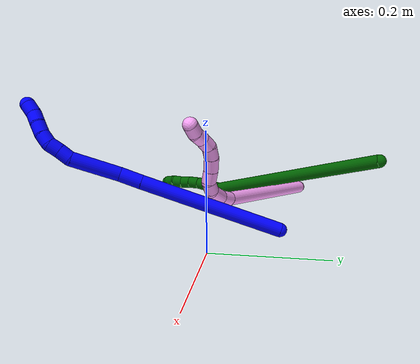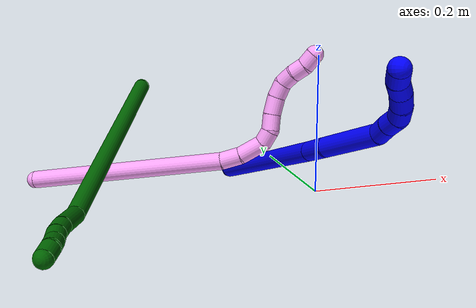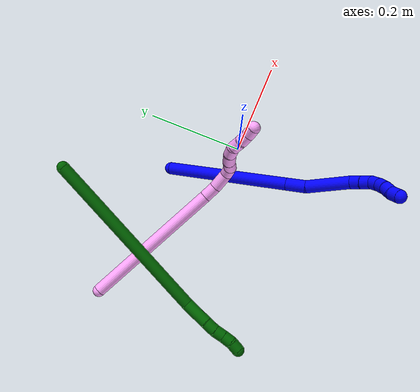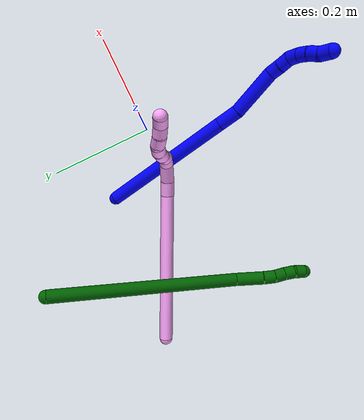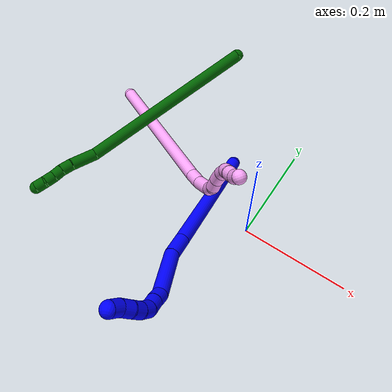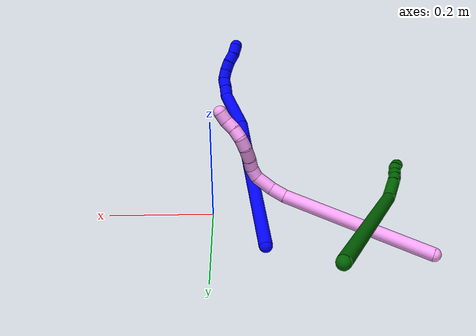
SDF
<sdf version="1.7">
 <world name="default">
  <model name="photoneo_s_sensor">
   <static>1</static>
   <pose>0 0 2 1.57079 1.57079 3.14159</pose>
   <link name="link">
    <inertial><mass>0.1</mass></inertial>
    <sensor name="sensor" type="depth">
     <update_rate>30</update_rate>
     <camera>
      <horizontal_fov>1.22</horizontal_fov>
      <image><width>1920</width><height>1200</height><format>B8G8R8</format></image>
      <clip><near>0.1</near><far>4</far></clip>
      <depth_camera><output>points</output></depth_camera>
     </camera>
     <plugin name="camera_plugin" filename="libgazebo_ros_depth_camera.so">
      <baseline>0.2</baseline>
      <alwaysOn>1</alwaysOn>
      <updateRate>0.0</updateRate>
      <cameraName>camera_ir</cameraName>
      <imageTopicName>/camera/color/image_raw</imageTopicName>
      <cameraInfoTopicName>/camera/color/camera_info</cameraInfoTopicName>
      <depthImageTopicName>/camera/depth/image_raw</depthImageTopicName>
      <depthImageCameraInfoTopicName>/camera/depth/camera_info</depthImageCameraInfoTopicName>
      <pointCloudTopicName>/camera/depth/points</pointCloudTopicName>
      <frameName>fr_optical</frameName>
      <pointCloudCutoff>0.1</pointCloudCutoff>
      <pointCloudCutoffMax>2.0</pointCloudCutoffMax>
      <distortionK1>0</distortionK1>
      <distortionK2>0</distortionK2>
      <distortionK3>0</distortionK3>
      <distortionT1>0</distortionT1>
      <distortionT2>0</distortionT2>
      <CxPrime>0</CxPrime>
      <Cx>0</Cx>
      <Cy>0</Cy>
      <focalLength>0</focalLength>
      <hackBaseline>0</hackBaseline>
     </plugin>
    </sensor>
   </link>
  </model>
  <model name="bin">
   <static>1</static>
   <link name="bottom">
    <collision name="collision-bottom">
     <pose>0 0 -0.01 0 -0 0</pose>
     <geometry><box><size>0.8 0.6 0.02</size></box></geometry>
     <surface>
      <friction><ode><mu>100</mu><mu2>100</mu2></ode></friction>
      <contact><collide_bitmask>65535</collide_bitmask></contact>
     </surface>
    </collision>
   </link>
   <link name="west_wall">
    <collision name="collision-west_wall">
     <pose>-0.41 0 0.1 0 -0 0</pose>
     <geometry><box><size>0.02 0.6 0.2</size></box></geometry>
     <surface>
      <friction><ode><mu>100</mu><mu2>100</mu2></ode></friction>
      <contact><collide_bitmask>65535</collide_bitmask></contact>
     </surface>
    </collision>
   </link>
   <link name="east_wall">
    <collision name="collision-east_wall">
     <pose>0.41 0 0.1 0 -0 0</pose>
     <geometry><box><size>0.02 0.6 0.2</size></box></geometry>
     <surface>
      <friction><ode><mu>100</mu><mu2>100</mu2></ode></friction>
      <contact><collide_bitmask>65535</collide_bitmask></contact>
     </surface>
    </collision>
   </link>
   <link name="south_wall">
    <collision name="collision-south_wall">
     <pose>0 -0.31 0.1 0 -0 0</pose>
     <geometry><box><size>0.8 0.02 0.2</size></box></geometry>
     <surface>
      <friction><ode><mu>100</mu><mu2>100</mu2></ode></friction>
      <contact><collide_bitmask>65535</collide_bitmask></contact>
     </surface>
    </collision>
   </link>
   <link name="north_wall">
    <collision name="collision-north_wall">
     <pose>0 0.31 0.1 0 -0 0</pose>
     <geometry><box><size>0.8 0.02 0.2</size></box></geometry>
     <surface>
      <friction><ode><mu>100</mu><mu2>100</mu2></ode></friction>
      <contact><collide_bitmask>65535</collide_bitmask></contact>
     </surface>
    </collision>
   </link>
  </model>
  <model name="1">
   <static>0</static>
   <link name="1">
    <collision name="collision-cylinder-e_1_1_4">
     <pose>0.011053 -0.040038 0.120317 0.321242 0.086943 0.014095</pose>
     <geometry><cylinder><radius>0.0125</radius><length>0.254569</length></cylinder></geometry>
     <surface>
      <friction><ode><mu>1.16</mu><mu2>1.16</mu2><slip1>0</slip1><slip2>0</slip2></ode></friction>
      <contact><ode><kp>1e+06</kp><kd>1</kd><max_vel>0</max_vel><min_depth>0.001</min_depth></ode></contact>
     </surface>
    </collision>
    <visual name="visual-cylinder-e_1_1_4">
     <pose>0.011053 -0.040038 0.120317 0.321242 0.086943 0.014095</pose>
     <geometry><cylinder><radius>0.0125</radius><length>0.254569</length></cylinder></geometry>
     <material><ambient>0 0 1 1</ambient></material>
    </visual>
    <collision name="collision-cylinder-e_2_4_5">
     <pose>0.023717 -0.086509 0.258992 0.337076 0.082693 0.014078</pose>
     <geometry><cylinder><radius>0.0125</radius><length>0.03904</length></cylinder></geometry>
     <surface>
      <friction><ode><mu>1.16</mu><mu2>1.16</mu2><slip1>0</slip1><slip2>0</slip2></ode></friction>
      <contact><ode><kp>1e+06</kp><kd>1</kd><max_vel>0</max_vel><min_depth>0.001</min_depth></ode></contact>
     </surface>
    </collision>
    <visual name="visual-cylinder-e_2_4_5">
     <pose>0.023717 -0.086509 0.258992 0.337076 0.082693 0.014078</pose>
     <geometry><cylinder><radius>0.0125</radius><length>0.03904</length></cylinder></geometry>
     <material><ambient>0 0 1 1</ambient></material>
    </visual>
    <collision name="collision-cylinder-e_3_5_6">
     <pose>0.020078 -0.101813 0.318766 0.211002 -0.123377 -0.013081</pose>
     <geometry><cylinder><radius>0.0125</radius><length>0.085358</length></cylinder></geometry>
     <surface>
      <friction><ode><mu>1.16</mu><mu2>1.16</mu2><slip1>0</slip1><slip2>0</slip2></ode></friction>
      <contact><ode><kp>1e+06</kp><kd>1</kd><max_vel>0</max_vel><min_depth>0.001</min_depth></ode></contact>
     </surface>
    </collision>
    <visual name="visual-cylinder-e_3_5_6">
     <pose>0.020078 -0.101813 0.318766 0.211002 -0.123377 -0.013081</pose>
     <geometry><cylinder><radius>0.0125</radius><length>0.085358</length></cylinder></geometry>
     <material><ambient>0 0 1 1</ambient></material>
    </visual>
    <collision name="collision-cylinder-e_4_6_7">
     <pose>0.013742 -0.11657 0.368823 0.597901 -0.103242 -0.031843</pose>
     <geometry><cylinder><radius>0.0125</radius><length>0.021024</length></cylinder></geometry>
     <surface>
      <friction><ode><mu>1.16</mu><mu2>1.16</mu2><slip1>0</slip1><slip2>0</slip2></ode></friction>
      <contact><ode><kp>1e+06</kp><kd>1</kd><max_vel>0</max_vel><min_depth>0.001</min_depth></ode></contact>
     </surface>
    </collision>
    <visual name="visual-cylinder-e_4_6_7">
     <pose>0.013742 -0.11657 0.368823 0.597901 -0.103242 -0.031843</pose>
     <geometry><cylinder><radius>0.0125</radius><length>0.021024</length></cylinder></geometry>
     <material><ambient>0 0 1 1</ambient></material>
    </visual>
    <collision name="collision-cylinder-e_5_7_8">
     <pose>0.01142 -0.127309 0.386124 0.510886 -0.124165 -0.032464</pose>
     <geometry><cylinder><radius>0.0125</radius><length>0.020006</length></cylinder></geometry>
     <surface>
      <friction><ode><mu>1.16</mu><mu2>1.16</mu2><slip1>0</slip1><slip2>0</slip2></ode></friction>
      <contact><ode><kp>1e+06</kp><kd>1</kd><max_vel>0</max_vel><min_depth>0.001</min_depth></ode></contact>
     </surface>
    </collision>
    <visual name="visual-cylinder-e_5_7_8">
     <pose>0.01142 -0.127309 0.386124 0.510886 -0.124165 -0.032464</pose>
     <geometry><cylinder><radius>0.0125</radius><length>0.020006</length></cylinder></geometry>
     <material><ambient>0 0 1 1</ambient></material>
    </visual>
    <collision name="collision-cylinder-e_6_8_9">
     <pose>0.010165 -0.14036 0.40051 0.960894 -0.001627 -0.000848</pose>
     <geometry><cylinder><radius>0.0125</radius><length>0.020001</length></cylinder></geometry>
     <surface>
      <friction><ode><mu>1.16</mu><mu2>1.16</mu2><slip1>0</slip1><slip2>0</slip2></ode></friction>
      <contact><ode><kp>1e+06</kp><kd>1</kd><max_vel>0</max_vel><min_depth>0.001</min_depth></ode></contact>
     </surface>
    </collision>
    <visual name="visual-cylinder-e_6_8_9">
     <pose>0.010165 -0.14036 0.40051 0.960894 -0.001627 -0.000848</pose>
     <geometry><cylinder><radius>0.0125</radius><length>0.020001</length></cylinder></geometry>
     <material><ambient>0 0 1 1</ambient></material>
    </visual>
    <collision name="collision-cylinder-e_7_9_10">
     <pose>0.010445 -0.157724 0.410227 1.1604 0.029705 0.019471</pose>
     <geometry><cylinder><radius>0.0125</radius><length>0.020003</length></cylinder></geometry>
     <surface>
      <friction><ode><mu>1.16</mu><mu2>1.16</mu2><slip1>0</slip1><slip2>0</slip2></ode></friction>
      <contact><ode><kp>1e+06</kp><kd>1</kd><max_vel>0</max_vel><min_depth>0.001</min_depth></ode></contact>
     </surface>
    </collision>
    <visual name="visual-cylinder-e_7_9_10">
     <pose>0.010445 -0.157724 0.410227 1.1604 0.029705 0.019471</pose>
     <geometry><cylinder><radius>0.0125</radius><length>0.020003</length></cylinder></geometry>
     <material><ambient>0 0 1 1</ambient></material>
    </visual>
    <collision name="collision-cylinder-e_8_10_11">
     <pose>0.012685 -0.176053 0.41772 1.20548 0.195539 0.134789</pose>
     <geometry><cylinder><radius>0.0125</radius><length>0.02</length></cylinder></geometry>
     <surface>
      <friction><ode><mu>1.16</mu><mu2>1.16</mu2><slip1>0</slip1><slip2>0</slip2></ode></friction>
      <contact><ode><kp>1e+06</kp><kd>1</kd><max_vel>0</max_vel><min_depth>0.001</min_depth></ode></contact>
     </surface>
    </collision>
    <visual name="visual-cylinder-e_8_10_11">
     <pose>0.012685 -0.176053 0.41772 1.20548 0.195539 0.134789</pose>
     <geometry><cylinder><radius>0.0125</radius><length>0.02</length></cylinder></geometry>
     <material><ambient>0 0 1 1</ambient></material>
    </visual>
    <collision name="collision-cylinder-e_9_11_2">
     <pose>0.015436 -0.193463 0.426821 0.974637 0.080835 0.042855</pose>
     <geometry><cylinder><radius>0.0125</radius><length>0.02</length></cylinder></geometry>
     <surface>
      <friction><ode><mu>1.16</mu><mu2>1.16</mu2><slip1>0</slip1><slip2>0</slip2></ode></friction>
      <contact><ode><kp>1e+06</kp><kd>1</kd><max_vel>0</max_vel><min_depth>0.001</min_depth></ode></contact>
     </surface>
    </collision>
    <visual name="visual-cylinder-e_9_11_2">
     <pose>0.015436 -0.193463 0.426821 0.974637 0.080835 0.042855</pose>
     <geometry><cylinder><radius>0.0125</radius><length>0.02</length></cylinder></geometry>
     <material><ambient>0 0 1 1</ambient></material>
    </visual>
    <collision name="collision-sphere-2">
     <pose>0.016243 -0.201711 0.432417 0 -0 0</pose>
     <geometry><sphere><radius>0.0125</radius></sphere></geometry>
     <surface>
      <friction><ode><mu>1.16</mu><mu2>1.16</mu2><slip1>0</slip1><slip2>0</slip2></ode></friction>
      <contact><ode><kp>1e+06</kp><kd>1</kd><max_vel>0</max_vel><min_depth>0.001</min_depth></ode></contact>
     </surface>
    </collision>
    <visual name="visual-sphere-2">
     <pose>0.016243 -0.201711 0.432417 0 -0 0</pose>
     <geometry><sphere><radius>0.0125</radius></sphere></geometry>
     <material><ambient>0 0 1 1</ambient></material>
    </visual>
    <collision name="collision-sphere-11">
     <pose>0.014628 -0.185215 0.421224 0 -0 0</pose>
     <geometry><sphere><radius>0.0125</radius></sphere></geometry>
     <surface>
      <friction><ode><mu>1.16</mu><mu2>1.16</mu2><slip1>0</slip1><slip2>0</slip2></ode></friction>
      <contact><ode><kp>1e+06</kp><kd>1</kd><max_vel>0</max_vel><min_depth>0.001</min_depth></ode></contact>
     </surface>
    </collision>
    <visual name="visual-sphere-11">
     <pose>0.014628 -0.185215 0.421224 0 -0 0</pose>
     <geometry><sphere><radius>0.0125</radius></sphere></geometry>
     <material><ambient>0 0 1 1</ambient></material>
    </visual>
    <collision name="collision-sphere-10">
     <pose>0.010742 -0.166891 0.414215 0 -0 0</pose>
     <geometry><sphere><radius>0.0125</radius></sphere></geometry>
     <surface>
      <friction><ode><mu>1.16</mu><mu2>1.16</mu2><slip1>0</slip1><slip2>0</slip2></ode></friction>
      <contact><ode><kp>1e+06</kp><kd>1</kd><max_vel>0</max_vel><min_depth>0.001</min_depth></ode></contact>
     </surface>
    </collision>
    <visual name="visual-sphere-10">
     <pose>0.010742 -0.166891 0.414215 0 -0 0</pose>
     <geometry><sphere><radius>0.0125</radius></sphere></geometry>
     <material><ambient>0 0 1 1</ambient></material>
    </visual>
    <collision name="collision-sphere-9">
     <pose>0.010148 -0.148557 0.406239 0 -0 0</pose>
     <geometry><sphere><radius>0.0125</radius></sphere></geometry>
     <surface>
      <friction><ode><mu>1.16</mu><mu2>1.16</mu2><slip1>0</slip1><slip2>0</slip2></ode></friction>
      <contact><ode><kp>1e+06</kp><kd>1</kd><max_vel>0</max_vel><min_depth>0.001</min_depth></ode></contact>
     </surface>
    </collision>
    <visual name="visual-sphere-9">
     <pose>0.010148 -0.148557 0.406239 0 -0 0</pose>
     <geometry><sphere><radius>0.0125</radius></sphere></geometry>
     <material><ambient>0 0 1 1</ambient></material>
    </visual>
    <collision name="collision-sphere-4">
     <pose>0.022105 -0.080075 0.240634 0 -0 0</pose>
     <geometry><sphere><radius>0.0125</radius></sphere></geometry>
     <surface>
      <friction><ode><mu>1.16</mu><mu2>1.16</mu2><slip1>0</slip1><slip2>0</slip2></ode></friction>
      <contact><ode><kp>1e+06</kp><kd>1</kd><max_vel>0</max_vel><min_depth>0.001</min_depth></ode></contact>
     </surface>
    </collision>
    <visual name="visual-sphere-4">
     <pose>0.022105 -0.080075 0.240634 0 -0 0</pose>
     <geometry><sphere><radius>0.0125</radius></sphere></geometry>
     <material><ambient>0 0 1 1</ambient></material>
    </visual>
    <collision name="collision-sphere-1">
     <geometry><sphere><radius>0.0125</radius></sphere></geometry>
     <surface>
      <friction><ode><mu>1.16</mu><mu2>1.16</mu2><slip1>0</slip1><slip2>0</slip2></ode></friction>
      <contact><ode><kp>1e+06</kp><kd>1</kd><max_vel>0</max_vel><min_depth>0.001</min_depth></ode></contact>
     </surface>
    </collision>
    <visual name="visual-sphere-1">
     <geometry><sphere><radius>0.0125</radius></sphere></geometry>
     <material><ambient>0 0 1 1</ambient></material>
    </visual>
    <collision name="collision-sphere-8">
     <pose>0.010181 -0.132162 0.394782 0 -0 0</pose>
     <geometry><sphere><radius>0.0125</radius></sphere></geometry>
     <surface>
      <friction><ode><mu>1.16</mu><mu2>1.16</mu2><slip1>0</slip1><slip2>0</slip2></ode></friction>
      <contact><ode><kp>1e+06</kp><kd>1</kd><max_vel>0</max_vel><min_depth>0.001</min_depth></ode></contact>
     </surface>
    </collision>
    <visual name="visual-sphere-8">
     <pose>0.010181 -0.132162 0.394782 0 -0 0</pose>
     <geometry><sphere><radius>0.0125</radius></sphere></geometry>
     <material><ambient>0 0 1 1</ambient></material>
    </visual>
    <collision name="collision-sphere-5">
     <pose>0.02533 -0.092943 0.277351 0 -0 0</pose>
     <geometry><sphere><radius>0.0125</radius></sphere></geometry>
     <surface>
      <friction><ode><mu>1.16</mu><mu2>1.16</mu2><slip1>0</slip1><slip2>0</slip2></ode></friction>
      <contact><ode><kp>1e+06</kp><kd>1</kd><max_vel>0</max_vel><min_depth>0.001</min_depth></ode></contact>
     </surface>
    </collision>
    <visual name="visual-sphere-5">
     <pose>0.02533 -0.092943 0.277351 0 -0 0</pose>
     <geometry><sphere><radius>0.0125</radius></sphere></geometry>
     <material><ambient>0 0 1 1</ambient></material>
    </visual>
    <collision name="collision-sphere-6">
     <pose>0.014825 -0.110684 0.360181 0 -0 0</pose>
     <geometry><sphere><radius>0.0125</radius></sphere></geometry>
     <surface>
      <friction><ode><mu>1.16</mu><mu2>1.16</mu2><slip1>0</slip1><slip2>0</slip2></ode></friction>
      <contact><ode><kp>1e+06</kp><kd>1</kd><max_vel>0</max_vel><min_depth>0.001</min_depth></ode></contact>
     </surface>
    </collision>
    <visual name="visual-sphere-6">
     <pose>0.014825 -0.110684 0.360181 0 -0 0</pose>
     <geometry><sphere><radius>0.0125</radius></sphere></geometry>
     <material><ambient>0 0 1 1</ambient></material>
    </visual>
    <collision name="collision-sphere-7">
     <pose>0.012659 -0.122456 0.377465 0 -0 0</pose>
     <geometry><sphere><radius>0.0125</radius></sphere></geometry>
     <surface>
      <friction><ode><mu>1.16</mu><mu2>1.16</mu2><slip1>0</slip1><slip2>0</slip2></ode></friction>
      <contact><ode><kp>1e+06</kp><kd>1</kd><max_vel>0</max_vel><min_depth>0.001</min_depth></ode></contact>
     </surface>
    </collision>
    <visual name="visual-sphere-7">
     <pose>0.012659 -0.122456 0.377465 0 -0 0</pose>
     <geometry><sphere><radius>0.0125</radius></sphere></geometry>
     <material><ambient>0 0 1 1</ambient></material>
    </visual>
    <inertial>
     <pose>0.013891 -0.081221 0.23307 0 -0 0</pose>
     <mass>0.5</mass>
     <inertia>
      <ixx>0.00147</ixx>
      <ixy>0</ixy>
      <ixz>0</ixz>
      <iyy>0.001383</iyy>
      <iyz>0</iyz>
      <izz>0.000376</izz>
     </inertia>
    </inertial>
   </link>
   <pose>-0.096905 0.113647 0.011495 -1.41684 0.556129 -2.64975</pose>
  </model>
  <model name="4">
   <static>0</static>
   <link name="4">
    <collision name="collision-cylinder-e_1_1_4">
     <pose>0.086564 -0.033982 -0.108093 2.83699 0.652379 2.28968</pose>
     <geometry><cylinder><radius>0.0125</radius><length>0.285182</length></cylinder></geometry>
     <surface>
      <friction><ode><mu>1.16</mu><mu2>1.16</mu2><slip1>0</slip1><slip2>0</slip2></ode></friction>
      <contact><ode><kp>1e+06</kp><kd>1</kd><max_vel>0</max_vel><min_depth>0.001</min_depth></ode></contact>
     </surface>
    </collision>
    <visual name="visual-cylinder-e_1_1_4">
     <pose>0.086564 -0.033982 -0.108093 2.83699 0.652379 2.28968</pose>
     <geometry><cylinder><radius>0.0125</radius><length>0.285182</length></cylinder></geometry>
     <material><ambient>1 0.65098 0.996078 1</ambient></material>
    </visual>
    <collision name="collision-cylinder-e_2_4_5">
     <pose>0.183411 -0.072421 -0.225223 2.68347 0.795555 2.1284</pose>
     <geometry><cylinder><radius>0.0125</radius><length>0.028795</length></cylinder></geometry>
     <surface>
      <friction><ode><mu>1.16</mu><mu2>1.16</mu2><slip1>0</slip1><slip2>0</slip2></ode></friction>
      <contact><ode><kp>1e+06</kp><kd>1</kd><max_vel>0</max_vel><min_depth>0.001</min_depth></ode></contact>
     </surface>
    </collision>
    <visual name="visual-cylinder-e_2_4_5">
     <pose>0.183411 -0.072421 -0.225223 2.68347 0.795555 2.1284</pose>
     <geometry><cylinder><radius>0.0125</radius><length>0.028795</length></cylinder></geometry>
     <material><ambient>1 0.65098 0.996078 1</ambient></material>
    </visual>
    <collision name="collision-cylinder-e_3_5_6">
     <pose>0.208708 -0.082442 -0.242162 2.52807 0.998898 2.08955</pose>
     <geometry><cylinder><radius>0.0125</radius><length>0.035709</length></cylinder></geometry>
     <surface>
      <friction><ode><mu>1.16</mu><mu2>1.16</mu2><slip1>0</slip1><slip2>0</slip2></ode></friction>
      <contact><ode><kp>1e+06</kp><kd>1</kd><max_vel>0</max_vel><min_depth>0.001</min_depth></ode></contact>
     </surface>
    </collision>
    <visual name="visual-cylinder-e_3_5_6">
     <pose>0.208708 -0.082442 -0.242162 2.52807 0.998898 2.08955</pose>
     <geometry><cylinder><radius>0.0125</radius><length>0.035709</length></cylinder></geometry>
     <material><ambient>1 0.65098 0.996078 1</ambient></material>
    </visual>
    <collision name="collision-cylinder-e_4_6_7">
     <pose>0.233391 -0.092274 -0.249533 1.44729 1.15227 1.04216</pose>
     <geometry><cylinder><radius>0.0125</radius><length>0.021166</length></cylinder></geometry>
     <surface>
      <friction><ode><mu>1.16</mu><mu2>1.16</mu2><slip1>0</slip1><slip2>0</slip2></ode></friction>
      <contact><ode><kp>1e+06</kp><kd>1</kd><max_vel>0</max_vel><min_depth>0.001</min_depth></ode></contact>
     </surface>
    </collision>
    <visual name="visual-cylinder-e_4_6_7">
     <pose>0.233391 -0.092274 -0.249533 1.44729 1.15227 1.04216</pose>
     <geometry><cylinder><radius>0.0125</radius><length>0.021166</length></cylinder></geometry>
     <material><ambient>1 0.65098 0.996078 1</ambient></material>
    </visual>
    <collision name="collision-cylinder-e_5_7_8">
     <pose>0.25265 -0.098553 -0.243609 0.356923 1.03012 0.203493</pose>
     <geometry><cylinder><radius>0.0125</radius><length>0.022368</length></cylinder></geometry>
     <surface>
      <friction><ode><mu>1.16</mu><mu2>1.16</mu2><slip1>0</slip1><slip2>0</slip2></ode></friction>
      <contact><ode><kp>1e+06</kp><kd>1</kd><max_vel>0</max_vel><min_depth>0.001</min_depth></ode></contact>
     </surface>
    </collision>
    <visual name="visual-cylinder-e_5_7_8">
     <pose>0.25265 -0.098553 -0.243609 0.356923 1.03012 0.203493</pose>
     <geometry><cylinder><radius>0.0125</radius><length>0.022368</length></cylinder></geometry>
     <material><ambient>1 0.65098 0.996078 1</ambient></material>
    </visual>
    <collision name="collision-cylinder-e_6_8_9">
     <pose>0.273594 -0.103578 -0.233988 0.619287 1.14195 0.405372</pose>
     <geometry><cylinder><radius>0.0125</radius><length>0.024971</length></cylinder></geometry>
     <surface>
      <friction><ode><mu>1.16</mu><mu2>1.16</mu2><slip1>0</slip1><slip2>0</slip2></ode></friction>
      <contact><ode><kp>1e+06</kp><kd>1</kd><max_vel>0</max_vel><min_depth>0.001</min_depth></ode></contact>
     </surface>
    </collision>
    <visual name="visual-cylinder-e_6_8_9">
     <pose>0.273594 -0.103578 -0.233988 0.619287 1.14195 0.405372</pose>
     <geometry><cylinder><radius>0.0125</radius><length>0.024971</length></cylinder></geometry>
     <material><ambient>1 0.65098 0.996078 1</ambient></material>
    </visual>
    <collision name="collision-cylinder-e_7_9_10">
     <pose>0.294757 -0.110734 -0.228226 1.21606 1.14764 0.845483</pose>
     <geometry><cylinder><radius>0.0125</radius><length>0.021515</length></cylinder></geometry>
     <surface>
      <friction><ode><mu>1.16</mu><mu2>1.16</mu2><slip1>0</slip1><slip2>0</slip2></ode></friction>
      <contact><ode><kp>1e+06</kp><kd>1</kd><max_vel>0</max_vel><min_depth>0.001</min_depth></ode></contact>
     </surface>
    </collision>
    <visual name="visual-cylinder-e_7_9_10">
     <pose>0.294757 -0.110734 -0.228226 1.21606 1.14764 0.845483</pose>
     <geometry><cylinder><radius>0.0125</radius><length>0.021515</length></cylinder></geometry>
     <material><ambient>1 0.65098 0.996078 1</ambient></material>
    </visual>
    <collision name="collision-cylinder-e_8_10_11">
     <pose>0.312504 -0.12054 -0.229084 1.9705 0.911814 1.27346</pose>
     <geometry><cylinder><radius>0.0125</radius><length>0.020084</length></cylinder></geometry>
     <surface>
      <friction><ode><mu>1.16</mu><mu2>1.16</mu2><slip1>0</slip1><slip2>0</slip2></ode></friction>
      <contact><ode><kp>1e+06</kp><kd>1</kd><max_vel>0</max_vel><min_depth>0.001</min_depth></ode></contact>
     </surface>
    </collision>
    <visual name="visual-cylinder-e_8_10_11">
     <pose>0.312504 -0.12054 -0.229084 1.9705 0.911814 1.27346</pose>
     <geometry><cylinder><radius>0.0125</radius><length>0.020084</length></cylinder></geometry>
     <material><ambient>1 0.65098 0.996078 1</ambient></material>
    </visual>
    <collision name="collision-cylinder-e_9_11_12">
     <pose>0.328524 -0.13066 -0.23538 2.29021 0.938241 1.68199</pose>
     <geometry><cylinder><radius>0.0125</radius><length>0.020038</length></cylinder></geometry>
     <surface>
      <friction><ode><mu>1.16</mu><mu2>1.16</mu2><slip1>0</slip1><slip2>0</slip2></ode></friction>
      <contact><ode><kp>1e+06</kp><kd>1</kd><max_vel>0</max_vel><min_depth>0.001</min_depth></ode></contact>
     </surface>
    </collision>
    <visual name="visual-cylinder-e_9_11_12">
     <pose>0.328524 -0.13066 -0.23538 2.29021 0.938241 1.68199</pose>
     <geometry><cylinder><radius>0.0125</radius><length>0.020038</length></cylinder></geometry>
     <material><ambient>1 0.65098 0.996078 1</ambient></material>
    </visual>
    <collision name="collision-cylinder-e_10_12_2">
     <pose>0.345589 -0.139572 -0.240355 1.80676 1.09903 1.3213</pose>
     <geometry><cylinder><radius>0.0125</radius><length>0.020172</length></cylinder></geometry>
     <surface>
      <friction><ode><mu>1.16</mu><mu2>1.16</mu2><slip1>0</slip1><slip2>0</slip2></ode></friction>
      <contact><ode><kp>1e+06</kp><kd>1</kd><max_vel>0</max_vel><min_depth>0.001</min_depth></ode></contact>
     </surface>
    </collision>
    <visual name="visual-cylinder-e_10_12_2">
     <pose>0.345589 -0.139572 -0.240355 1.80676 1.09903 1.3213</pose>
     <geometry><cylinder><radius>0.0125</radius><length>0.020172</length></cylinder></geometry>
     <material><ambient>1 0.65098 0.996078 1</ambient></material>
    </visual>
    <collision name="collision-sphere-2">
     <pose>0.354574 -0.144029 -0.241427 0 -0 0</pose>
     <geometry><sphere><radius>0.0125</radius></sphere></geometry>
     <surface>
      <friction><ode><mu>1.16</mu><mu2>1.16</mu2><slip1>0</slip1><slip2>0</slip2></ode></friction>
      <contact><ode><kp>1e+06</kp><kd>1</kd><max_vel>0</max_vel><min_depth>0.001</min_depth></ode></contact>
     </surface>
    </collision>
    <visual name="visual-sphere-2">
     <pose>0.354574 -0.144029 -0.241427 0 -0 0</pose>
     <geometry><sphere><radius>0.0125</radius></sphere></geometry>
     <material><ambient>1 0.65098 0.996078 1</ambient></material>
    </visual>
    <collision name="collision-sphere-12">
     <pose>0.336605 -0.135116 -0.239283 0 -0 0</pose>
     <geometry><sphere><radius>0.0125</radius></sphere></geometry>
     <surface>
      <friction><ode><mu>1.16</mu><mu2>1.16</mu2><slip1>0</slip1><slip2>0</slip2></ode></friction>
      <contact><ode><kp>1e+06</kp><kd>1</kd><max_vel>0</max_vel><min_depth>0.001</min_depth></ode></contact>
     </surface>
    </collision>
    <visual name="visual-sphere-12">
     <pose>0.336605 -0.135116 -0.239283 0 -0 0</pose>
     <geometry><sphere><radius>0.0125</radius></sphere></geometry>
     <material><ambient>1 0.65098 0.996078 1</ambient></material>
    </visual>
    <collision name="collision-sphere-11">
     <pose>0.320444 -0.126205 -0.231477 0 -0 0</pose>
     <geometry><sphere><radius>0.0125</radius></sphere></geometry>
     <surface>
      <friction><ode><mu>1.16</mu><mu2>1.16</mu2><slip1>0</slip1><slip2>0</slip2></ode></friction>
      <contact><ode><kp>1e+06</kp><kd>1</kd><max_vel>0</max_vel><min_depth>0.001</min_depth></ode></contact>
     </surface>
    </collision>
    <visual name="visual-sphere-11">
     <pose>0.320444 -0.126205 -0.231477 0 -0 0</pose>
     <geometry><sphere><radius>0.0125</radius></sphere></geometry>
     <material><ambient>1 0.65098 0.996078 1</ambient></material>
    </visual>
    <collision name="collision-sphere-10">
     <pose>0.304565 -0.114876 -0.226692 0 -0 0</pose>
     <geometry><sphere><radius>0.0125</radius></sphere></geometry>
     <surface>
      <friction><ode><mu>1.16</mu><mu2>1.16</mu2><slip1>0</slip1><slip2>0</slip2></ode></friction>
      <contact><ode><kp>1e+06</kp><kd>1</kd><max_vel>0</max_vel><min_depth>0.001</min_depth></ode></contact>
     </surface>
    </collision>
    <visual name="visual-sphere-10">
     <pose>0.304565 -0.114876 -0.226692 0 -0 0</pose>
     <geometry><sphere><radius>0.0125</radius></sphere></geometry>
     <material><ambient>1 0.65098 0.996078 1</ambient></material>
    </visual>
    <collision name="collision-sphere-9">
     <pose>0.284948 -0.106592 -0.22976 0 -0 0</pose>
     <geometry><sphere><radius>0.0125</radius></sphere></geometry>
     <surface>
      <friction><ode><mu>1.16</mu><mu2>1.16</mu2><slip1>0</slip1><slip2>0</slip2></ode></friction>
      <contact><ode><kp>1e+06</kp><kd>1</kd><max_vel>0</max_vel><min_depth>0.001</min_depth></ode></contact>
     </surface>
    </collision>
    <visual name="visual-sphere-9">
     <pose>0.284948 -0.106592 -0.22976 0 -0 0</pose>
     <geometry><sphere><radius>0.0125</radius></sphere></geometry>
     <material><ambient>1 0.65098 0.996078 1</ambient></material>
    </visual>
    <collision name="collision-sphere-4">
     <pose>0.173128 -0.067965 -0.216186 0 -0 0</pose>
     <geometry><sphere><radius>0.0125</radius></sphere></geometry>
     <surface>
      <friction><ode><mu>1.16</mu><mu2>1.16</mu2><slip1>0</slip1><slip2>0</slip2></ode></friction>
      <contact><ode><kp>1e+06</kp><kd>1</kd><max_vel>0</max_vel><min_depth>0.001</min_depth></ode></contact>
     </surface>
    </collision>
    <visual name="visual-sphere-4">
     <pose>0.173128 -0.067965 -0.216186 0 -0 0</pose>
     <geometry><sphere><radius>0.0125</radius></sphere></geometry>
     <material><ambient>1 0.65098 0.996078 1</ambient></material>
    </visual>
    <collision name="collision-sphere-1">
     <geometry><sphere><radius>0.0125</radius></sphere></geometry>
     <surface>
      <friction><ode><mu>1.16</mu><mu2>1.16</mu2><slip1>0</slip1><slip2>0</slip2></ode></friction>
      <contact><ode><kp>1e+06</kp><kd>1</kd><max_vel>0</max_vel><min_depth>0.001</min_depth></ode></contact>
     </surface>
    </collision>
    <visual name="visual-sphere-1">
     <geometry><sphere><radius>0.0125</radius></sphere></geometry>
     <material><ambient>1 0.65098 0.996078 1</ambient></material>
    </visual>
    <collision name="collision-sphere-8">
     <pose>0.262239 -0.100565 -0.238215 0 -0 0</pose>
     <geometry><sphere><radius>0.0125</radius></sphere></geometry>
     <surface>
      <friction><ode><mu>1.16</mu><mu2>1.16</mu2><slip1>0</slip1><slip2>0</slip2></ode></friction>
      <contact><ode><kp>1e+06</kp><kd>1</kd><max_vel>0</max_vel><min_depth>0.001</min_depth></ode></contact>
     </surface>
    </collision>
    <visual name="visual-sphere-8">
     <pose>0.262239 -0.100565 -0.238215 0 -0 0</pose>
     <geometry><sphere><radius>0.0125</radius></sphere></geometry>
     <material><ambient>1 0.65098 0.996078 1</ambient></material>
    </visual>
    <collision name="collision-sphere-5">
     <pose>0.193695 -0.076878 -0.234261 0 -0 0</pose>
     <geometry><sphere><radius>0.0125</radius></sphere></geometry>
     <surface>
      <friction><ode><mu>1.16</mu><mu2>1.16</mu2><slip1>0</slip1><slip2>0</slip2></ode></friction>
      <contact><ode><kp>1e+06</kp><kd>1</kd><max_vel>0</max_vel><min_depth>0.001</min_depth></ode></contact>
     </surface>
    </collision>
    <visual name="visual-sphere-5">
     <pose>0.193695 -0.076878 -0.234261 0 -0 0</pose>
     <geometry><sphere><radius>0.0125</radius></sphere></geometry>
     <material><ambient>1 0.65098 0.996078 1</ambient></material>
    </visual>
    <collision name="collision-sphere-6">
     <pose>0.223722 -0.088005 -0.250063 0 -0 0</pose>
     <geometry><sphere><radius>0.0125</radius></sphere></geometry>
     <surface>
      <friction><ode><mu>1.16</mu><mu2>1.16</mu2><slip1>0</slip1><slip2>0</slip2></ode></friction>
      <contact><ode><kp>1e+06</kp><kd>1</kd><max_vel>0</max_vel><min_depth>0.001</min_depth></ode></contact>
     </surface>
    </collision>
    <visual name="visual-sphere-6">
     <pose>0.223722 -0.088005 -0.250063 0 -0 0</pose>
     <geometry><sphere><radius>0.0125</radius></sphere></geometry>
     <material><ambient>1 0.65098 0.996078 1</ambient></material>
    </visual>
    <collision name="collision-sphere-7">
     <pose>0.243061 -0.096542 -0.249003 0 -0 0</pose>
     <geometry><sphere><radius>0.0125</radius></sphere></geometry>
     <surface>
      <friction><ode><mu>1.16</mu><mu2>1.16</mu2><slip1>0</slip1><slip2>0</slip2></ode></friction>
      <contact><ode><kp>1e+06</kp><kd>1</kd><max_vel>0</max_vel><min_depth>0.001</min_depth></ode></contact>
     </surface>
    </collision>
    <visual name="visual-sphere-7">
     <pose>0.243061 -0.096542 -0.249003 0 -0 0</pose>
     <geometry><sphere><radius>0.0125</radius></sphere></geometry>
     <material><ambient>1 0.65098 0.996078 1</ambient></material>
    </visual>
    <inertial>
     <pose>0.162032 -0.063403 -0.163217 0 -0 0</pose>
     <mass>0.5</mass>
     <inertia>
      <ixx>0.000182</ixx>
      <ixy>0</ixy>
      <ixz>0</ixz>
      <iyy>0.002663</iyy>
      <iyz>0</iyz>
      <izz>-0.000746</izz>
     </inertia>
    </inertial>
   </link>
   <pose>-0.388485 0.144773 0.011499 -0.656418 -0.836106 0.257578</pose>
  </model>
  <model name="6">
   <static>0</static>
   <link name="6">
    <collision name="collision-cylinder-e_1_1_4">
     <pose>-0.029969 -0.06824 0.165865 0.390312 -0.165565 -0.032799</pose>
     <geometry><cylinder><radius>0.0125</radius><length>0.363682</length></cylinder></geometry>
     <surface>
      <friction><ode><mu>1.16</mu><mu2>1.16</mu2><slip1>0</slip1><slip2>0</slip2></ode></friction>
      <contact><ode><kp>1e+06</kp><kd>1</kd><max_vel>0</max_vel><min_depth>0.001</min_depth></ode></contact>
     </surface>
    </collision>
    <visual name="visual-cylinder-e_1_1_4">
     <pose>-0.029969 -0.06824 0.165865 0.390312 -0.165565 -0.032799</pose>
     <geometry><cylinder><radius>0.0125</radius><length>0.363682</length></cylinder></geometry>
     <material><ambient>0 0.392157 0.003922 1</ambient></material>
    </visual>
    <collision name="collision-cylinder-e_2_4_5">
     <pose>-0.057355 -0.138941 0.358324 0.092267 0.096417 0.004455</pose>
     <geometry><cylinder><radius>0.0125</radius><length>0.053665</length></cylinder></geometry>
     <surface>
      <friction><ode><mu>1.16</mu><mu2>1.16</mu2><slip1>0</slip1><slip2>0</slip2></ode></friction>
      <contact><ode><kp>1e+06</kp><kd>1</kd><max_vel>0</max_vel><min_depth>0.001</min_depth></ode></contact>
     </surface>
    </collision>
    <visual name="visual-cylinder-e_2_4_5">
     <pose>-0.057355 -0.138941 0.358324 0.092267 0.096417 0.004455</pose>
     <geometry><cylinder><radius>0.0125</radius><length>0.053665</length></cylinder></geometry>
     <material><ambient>0 0.392157 0.003922 1</ambient></material>
    </visual>
    <collision name="collision-cylinder-e_3_5_6">
     <pose>-0.054263 -0.14383 0.395942 0.216852 0.045062 0.004906</pose>
     <geometry><cylinder><radius>0.0125</radius><length>0.022599</length></cylinder></geometry>
     <surface>
      <friction><ode><mu>1.16</mu><mu2>1.16</mu2><slip1>0</slip1><slip2>0</slip2></ode></friction>
      <contact><ode><kp>1e+06</kp><kd>1</kd><max_vel>0</max_vel><min_depth>0.001</min_depth></ode></contact>
     </surface>
    </collision>
    <visual name="visual-cylinder-e_3_5_6">
     <pose>-0.054263 -0.14383 0.395942 0.216852 0.045062 0.004906</pose>
     <geometry><cylinder><radius>0.0125</radius><length>0.022599</length></cylinder></geometry>
     <material><ambient>0 0.392157 0.003922 1</ambient></material>
    </visual>
    <collision name="collision-cylinder-e_4_6_7">
     <pose>-0.052339 -0.149677 0.416271 0.352019 0.141803 0.025261</pose>
     <geometry><cylinder><radius>0.0125</radius><length>0.020027</length></cylinder></geometry>
     <surface>
      <friction><ode><mu>1.16</mu><mu2>1.16</mu2><slip1>0</slip1><slip2>0</slip2></ode></friction>
      <contact><ode><kp>1e+06</kp><kd>1</kd><max_vel>0</max_vel><min_depth>0.001</min_depth></ode></contact>
     </surface>
    </collision>
    <visual name="visual-cylinder-e_4_6_7">
     <pose>-0.052339 -0.149677 0.416271 0.352019 0.141803 0.025261</pose>
     <geometry><cylinder><radius>0.0125</radius><length>0.020027</length></cylinder></geometry>
     <material><ambient>0 0.392157 0.003922 1</ambient></material>
    </visual>
    <collision name="collision-cylinder-e_5_7_8">
     <pose>-0.049348 -0.1554 0.435179 0.235607 0.158256 0.018768</pose>
     <geometry><cylinder><radius>0.0125</radius><length>0.020001</length></cylinder></geometry>
     <surface>
      <friction><ode><mu>1.16</mu><mu2>1.16</mu2><slip1>0</slip1><slip2>0</slip2></ode></friction>
      <contact><ode><kp>1e+06</kp><kd>1</kd><max_vel>0</max_vel><min_depth>0.001</min_depth></ode></contact>
     </surface>
    </collision>
    <visual name="visual-cylinder-e_5_7_8">
     <pose>-0.049348 -0.1554 0.435179 0.235607 0.158256 0.018768</pose>
     <geometry><cylinder><radius>0.0125</radius><length>0.020001</length></cylinder></geometry>
     <material><ambient>0 0.392157 0.003922 1</ambient></material>
    </visual>
    <collision name="collision-cylinder-e_6_8_2">
     <pose>-0.049322 -0.160802 0.454177 0.318381 -0.15551 -0.025016</pose>
     <geometry><cylinder><radius>0.0125</radius><length>0.020026</length></cylinder></geometry>
     <surface>
      <friction><ode><mu>1.16</mu><mu2>1.16</mu2><slip1>0</slip1><slip2>0</slip2></ode></friction>
      <contact><ode><kp>1e+06</kp><kd>1</kd><max_vel>0</max_vel><min_depth>0.001</min_depth></ode></contact>
     </surface>
    </collision>
    <visual name="visual-cylinder-e_6_8_2">
     <pose>-0.049322 -0.160802 0.454177 0.318381 -0.15551 -0.025016</pose>
     <geometry><cylinder><radius>0.0125</radius><length>0.020026</length></cylinder></geometry>
     <material><ambient>0 0.392157 0.003922 1</ambient></material>
    </visual>
    <collision name="collision-sphere-2">
     <pose>-0.050873 -0.163899 0.463572 0 -0 0</pose>
     <geometry><sphere><radius>0.0125</radius></sphere></geometry>
     <surface>
      <friction><ode><mu>1.16</mu><mu2>1.16</mu2><slip1>0</slip1><slip2>0</slip2></ode></friction>
      <contact><ode><kp>1e+06</kp><kd>1</kd><max_vel>0</max_vel><min_depth>0.001</min_depth></ode></contact>
     </surface>
    </collision>
    <visual name="visual-sphere-2">
     <pose>-0.050873 -0.163899 0.463572 0 -0 0</pose>
     <geometry><sphere><radius>0.0125</radius></sphere></geometry>
     <material><ambient>0 0.392157 0.003922 1</ambient></material>
    </visual>
    <collision name="collision-sphere-4">
     <pose>-0.059938 -0.13648 0.33173 0 -0 0</pose>
     <geometry><sphere><radius>0.0125</radius></sphere></geometry>
     <surface>
      <friction><ode><mu>1.16</mu><mu2>1.16</mu2><slip1>0</slip1><slip2>0</slip2></ode></friction>
      <contact><ode><kp>1e+06</kp><kd>1</kd><max_vel>0</max_vel><min_depth>0.001</min_depth></ode></contact>
     </surface>
    </collision>
    <visual name="visual-sphere-4">
     <pose>-0.059938 -0.13648 0.33173 0 -0 0</pose>
     <geometry><sphere><radius>0.0125</radius></sphere></geometry>
     <material><ambient>0 0.392157 0.003922 1</ambient></material>
    </visual>
    <collision name="collision-sphere-1">
     <geometry><sphere><radius>0.0125</radius></sphere></geometry>
     <surface>
      <friction><ode><mu>1.16</mu><mu2>1.16</mu2><slip1>0</slip1><slip2>0</slip2></ode></friction>
      <contact><ode><kp>1e+06</kp><kd>1</kd><max_vel>0</max_vel><min_depth>0.001</min_depth></ode></contact>
     </surface>
    </collision>
    <visual name="visual-sphere-1">
     <geometry><sphere><radius>0.0125</radius></sphere></geometry>
     <material><ambient>0 0.392157 0.003922 1</ambient></material>
    </visual>
    <collision name="collision-sphere-8">
     <pose>-0.047772 -0.157706 0.444782 0 -0 0</pose>
     <geometry><sphere><radius>0.0125</radius></sphere></geometry>
     <surface>
      <friction><ode><mu>1.16</mu><mu2>1.16</mu2><slip1>0</slip1><slip2>0</slip2></ode></friction>
      <contact><ode><kp>1e+06</kp><kd>1</kd><max_vel>0</max_vel><min_depth>0.001</min_depth></ode></contact>
     </surface>
    </collision>
    <visual name="visual-sphere-8">
     <pose>-0.047772 -0.157706 0.444782 0 -0 0</pose>
     <geometry><sphere><radius>0.0125</radius></sphere></geometry>
     <material><ambient>0 0.392157 0.003922 1</ambient></material>
    </visual>
    <collision name="collision-sphere-5">
     <pose>-0.054772 -0.141402 0.384919 0 -0 0</pose>
     <geometry><sphere><radius>0.0125</radius></sphere></geometry>
     <surface>
      <friction><ode><mu>1.16</mu><mu2>1.16</mu2><slip1>0</slip1><slip2>0</slip2></ode></friction>
      <contact><ode><kp>1e+06</kp><kd>1</kd><max_vel>0</max_vel><min_depth>0.001</min_depth></ode></contact>
     </surface>
    </collision>
    <visual name="visual-sphere-5">
     <pose>-0.054772 -0.141402 0.384919 0 -0 0</pose>
     <geometry><sphere><radius>0.0125</radius></sphere></geometry>
     <material><ambient>0 0.392157 0.003922 1</ambient></material>
    </visual>
    <collision name="collision-sphere-6">
     <pose>-0.053754 -0.146259 0.406966 0 -0 0</pose>
     <geometry><sphere><radius>0.0125</radius></sphere></geometry>
     <surface>
      <friction><ode><mu>1.16</mu><mu2>1.16</mu2><slip1>0</slip1><slip2>0</slip2></ode></friction>
      <contact><ode><kp>1e+06</kp><kd>1</kd><max_vel>0</max_vel><min_depth>0.001</min_depth></ode></contact>
     </surface>
    </collision>
    <visual name="visual-sphere-6">
     <pose>-0.053754 -0.146259 0.406966 0 -0 0</pose>
     <geometry><sphere><radius>0.0125</radius></sphere></geometry>
     <material><ambient>0 0.392157 0.003922 1</ambient></material>
    </visual>
    <collision name="collision-sphere-7">
     <pose>-0.050924 -0.153095 0.425576 0 -0 0</pose>
     <geometry><sphere><radius>0.0125</radius></sphere></geometry>
     <surface>
      <friction><ode><mu>1.16</mu><mu2>1.16</mu2><slip1>0</slip1><slip2>0</slip2></ode></friction>
      <contact><ode><kp>1e+06</kp><kd>1</kd><max_vel>0</max_vel><min_depth>0.001</min_depth></ode></contact>
     </surface>
    </collision>
    <visual name="visual-sphere-7">
     <pose>-0.050924 -0.153095 0.425576 0 -0 0</pose>
     <geometry><sphere><radius>0.0125</radius></sphere></geometry>
     <material><ambient>0 0.392157 0.003922 1</ambient></material>
    </visual>
    <inertial>
     <pose>-0.036453 -0.089701 0.229271 0 -0 0</pose>
     <mass>0.5</mass>
     <inertia>
      <ixx>0.003853</ixx>
      <ixy>0</ixy>
      <ixz>0</ixz>
      <iyy>0.003604</iyy>
      <iyz>0</iyz>
      <izz>0.00221</izz>
     </inertia>
    </inertial>
   </link>
   <pose>-0.203078 0.288501 0.117072 1.42189 -0.613805 -0.419273</pose>
  </model>
 </world>
</sdf>
